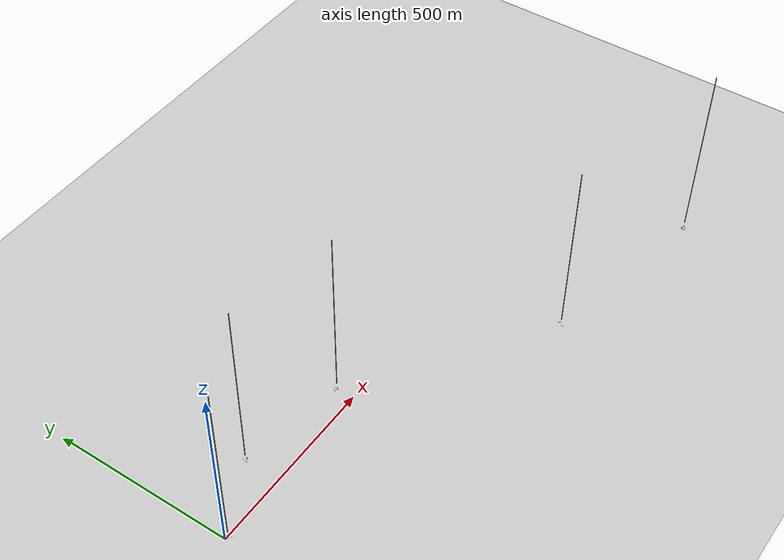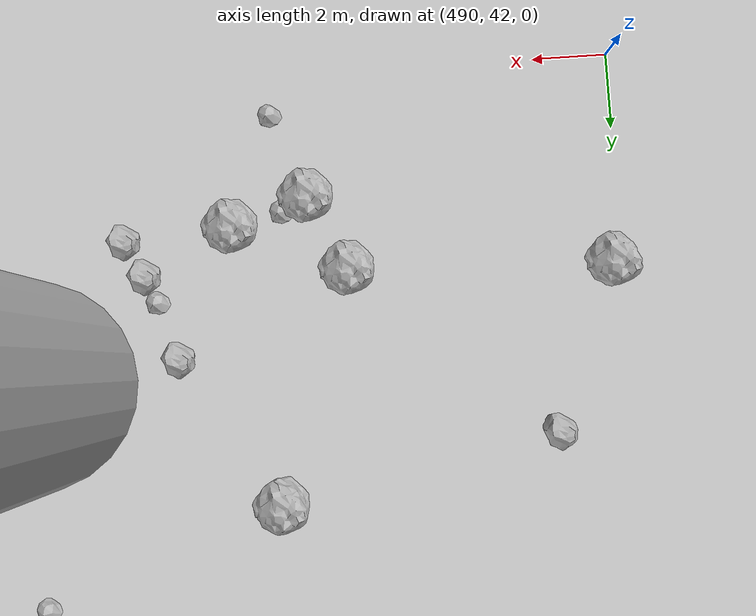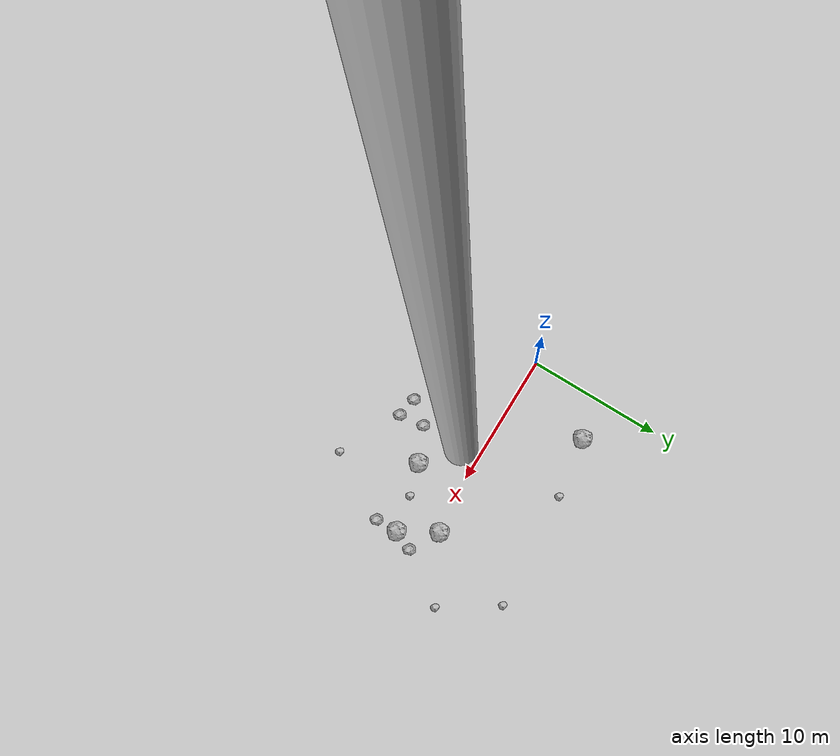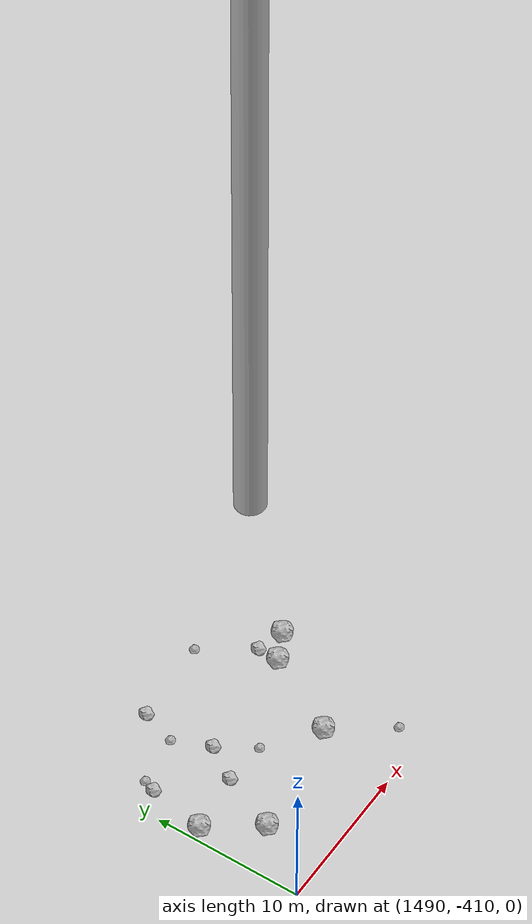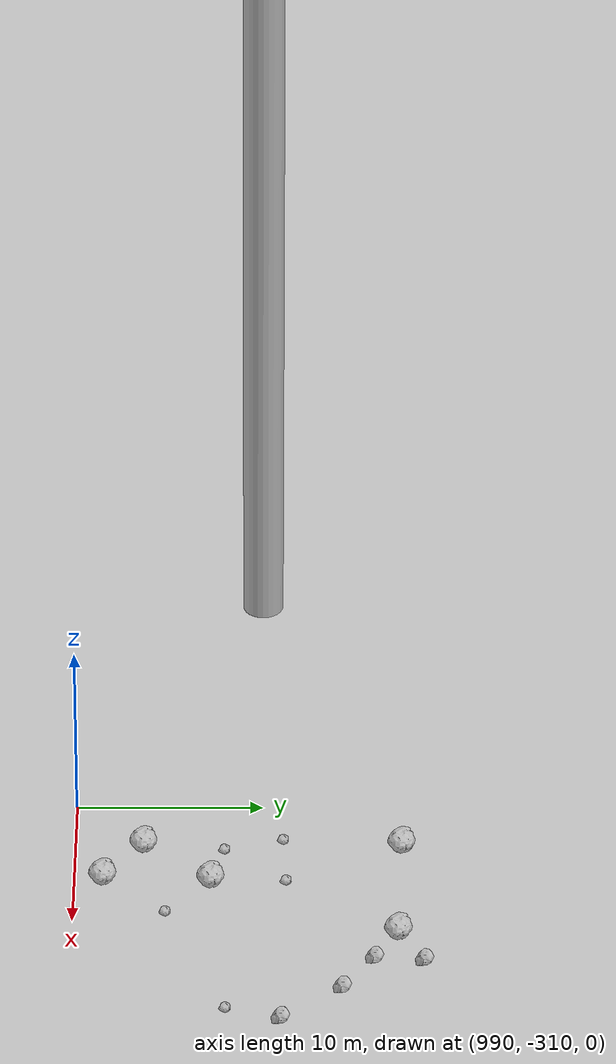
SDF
<?xml version="1.0" ?>
<sdf version="1.6">
  <world name="default">

    <include>
      <uri>model://custom_ground</uri>
    </include>

    <include>
      <uri>model://sun</uri>
    </include>

    <spherical_coordinates>
      <surface_model>EARTH_WGS84</surface_model>
      <latitude_deg>38.161479</latitude_deg>
      <longitude_deg>-122.454630</longitude_deg>
      <elevation>488.0</elevation>
      <heading_deg>90</heading_deg>
    </spherical_coordinates>

    <model name="rock1_0_0">
      <include>
        <uri>model://rock1</uri>
        <pose>10.828620680247203 -3.504781585015298 0.5 0 0 0</pose>
      </include>
    </model>
    <model name="rock1_0_1">
      <include>
        <uri>model://rock1</uri>
        <pose>3.575665401047383 -5.4992836600375306 0.5 0 0 0</pose>
      </include>
    </model>
    <model name="rock1_0_2">
      <include>
        <uri>model://rock1</uri>
        <pose>15.869141899743301 -2.2518947488512193 0.5 0 0 0</pose>
      </include>
    </model>
    <model name="rock1_0_3">
      <include>
        <uri>model://rock1</uri>
        <pose>3.160147413823302 5.755561875524933 0.5 0 0 0</pose>
      </include>
    </model>
    <model name="rock1_0_4">
      <include>
        <uri>model://rock1</uri>
        <pose>14.333954721540847 0.42899523770865144 0.5 0 0 0</pose>
      </include>
    </model>
    <model name="rock2_0_0">
      <include>
        <uri>model://rock2</uri>
        <pose>6.9877650956002535 -6.212542567536432 0.3 0 0 0</pose>
      </include>
    </model>
    <model name="rock2_0_1">
      <include>
        <uri>model://rock2</uri>
        <pose>15.877302549475115 -3.9267509392406392 0.3 0 0 0</pose>
      </include>
    </model>
    <model name="rock2_0_2">
      <include>
        <uri>model://rock2</uri>
        <pose>16.491298521750974 -0.7878109456255835 0.3 0 0 0</pose>
      </include>
    </model>
    <model name="rock2_0_3">
      <include>
        <uri>model://rock2</uri>
        <pose>8.266839763293932 -4.635893010884759 0.3 0 0 0</pose>
      </include>
    </model>
    <model name="rock2_0_4">
      <include>
        <uri>model://rock2</uri>
        <pose>8.492856780093357 -6.501839160746319 0.3 0 0 0</pose>
      </include>
    </model>
    <model name="rock3_0_0">
      <include>
        <uri>model://rock3</uri>
        <pose>7.582533963956653 6.46492068225006 0.2 0 0 0</pose>
      </include>
    </model>
    <model name="rock3_0_1">
      <include>
        <uri>model://rock3</uri>
        <pose>16.414358733297142 7.037651538146061 0.2 0 0 0</pose>
      </include>
    </model>
    <model name="rock3_0_2">
      <include>
        <uri>model://rock3</uri>
        <pose>13.049605502384562 -8.870254038993867 0.2 0 0 0</pose>
      </include>
    </model>
    <model name="rock3_0_3">
      <include>
        <uri>model://rock3</uri>
        <pose>13.150694820222888 -2.8114103266849844 0.2 0 0 0</pose>
      </include>
    </model>
    <model name="rock3_0_4">
      <include>
        <uri>model://rock3</uri>
        <pose>19.07053199987217 2.9497780384224583 0.2 0 0 0</pose>
      </include>
    </model>
    <model name="rock1_1_0">
      <include>
        <uri>model://rock1</uri>
        <pose>206.62146876128168 99.43484133071323 0.5 0 0 0</pose>
      </include>
    </model>
    <model name="rock1_1_1">
      <include>
        <uri>model://rock1</uri>
        <pose>197.38800266528932 96.95582999829493 0.5 0 0 0</pose>
      </include>
    </model>
    <model name="rock1_1_2">
      <include>
        <uri>model://rock1</uri>
        <pose>202.75808333462754 97.64141153024069 0.5 0 0 0</pose>
      </include>
    </model>
    <model name="rock1_1_3">
      <include>
        <uri>model://rock1</uri>
        <pose>195.93051706994973 93.04060837828395 0.5 0 0 0</pose>
      </include>
    </model>
    <model name="rock1_1_4">
      <include>
        <uri>model://rock1</uri>
        <pose>203.11453030663807 98.0393289900209 0.5 0 0 0</pose>
      </include>
    </model>
    <model name="rock2_1_0">
      <include>
        <uri>model://rock2</uri>
        <pose>207.37049186180923 104.7329589554544 0.3 0 0 0</pose>
      </include>
    </model>
    <model name="rock2_1_1">
      <include>
        <uri>model://rock2</uri>
        <pose>205.5331213899299 102.05041773467752 0.3 0 0 0</pose>
      </include>
    </model>
    <model name="rock2_1_2">
      <include>
        <uri>model://rock2</uri>
        <pose>192.99850661156327 102.45664166955184 0.3 0 0 0</pose>
      </include>
    </model>
    <model name="rock2_1_3">
      <include>
        <uri>model://rock2</uri>
        <pose>192.9086650275142 101.82972224038417 0.3 0 0 0</pose>
      </include>
    </model>
    <model name="rock2_1_4">
      <include>
        <uri>model://rock2</uri>
        <pose>205.39257390725078 99.54123281830752 0.3 0 0 0</pose>
      </include>
    </model>
    <model name="rock3_1_0">
      <include>
        <uri>model://rock3</uri>
        <pose>195.99496985308662 105.64785075024585 0.2 0 0 0</pose>
      </include>
    </model>
    <model name="rock3_1_1">
      <include>
        <uri>model://rock3</uri>
        <pose>196.5070382634768 94.61537705955753 0.2 0 0 0</pose>
      </include>
    </model>
    <model name="rock3_1_2">
      <include>
        <uri>model://rock3</uri>
        <pose>197.52254999292396 106.06784215138288 0.2 0 0 0</pose>
      </include>
    </model>
    <model name="rock3_1_3">
      <include>
        <uri>model://rock3</uri>
        <pose>197.90955422898546 105.1469891189915 0.2 0 0 0</pose>
      </include>
    </model>
    <model name="rock3_1_4">
      <include>
        <uri>model://rock3</uri>
        <pose>191.26599814615287 99.4878870789946 0.2 0 0 0</pose>
      </include>
    </model>
    <model name="rock1_2_0">
      <include>
        <uri>model://rock1</uri>
        <pose>497.3695337889209 47.35640106930893 0.5 0 0 0</pose>
      </include>
    </model>
    <model name="rock1_2_1">
      <include>
        <uri>model://rock1</uri>
        <pose>490.33967451325736 47.56771028023517 0.5 0 0 0</pose>
      </include>
    </model>
    <model name="rock1_2_2">
      <include>
        <uri>model://rock1</uri>
        <pose>499.4513583481114 53.47291928965261 0.5 0 0 0</pose>
      </include>
    </model>
    <model name="rock1_2_3">
      <include>
        <uri>model://rock1</uri>
        <pose>498.351420029857 45.37189915778143 0.5 0 0 0</pose>
      </include>
    </model>
    <model name="rock1_2_4">
      <include>
        <uri>model://rock1</uri>
        <pose>500.39750094863206 46.066026663622864 0.5 0 0 0</pose>
      </include>
    </model>
    <model name="rock2_2_0">
      <include>
        <uri>model://rock2</uri>
        <pose>492.00882569630545 52.02503806136861 0.3 0 0 0</pose>
      </include>
    </model>
    <model name="rock2_2_1">
      <include>
        <uri>model://rock2</uri>
        <pose>504.39542802830664 57.06868434057367 0.3 0 0 0</pose>
      </include>
    </model>
    <model name="rock2_2_2">
      <include>
        <uri>model://rock2</uri>
        <pose>503.2514404571535 46.30301270585604 0.3 0 0 0</pose>
      </include>
    </model>
    <model name="rock2_2_3">
      <include>
        <uri>model://rock2</uri>
        <pose>502.7506260580458 47.25951699675352 0.3 0 0 0</pose>
      </include>
    </model>
    <model name="rock2_2_4">
      <include>
        <uri>model://rock2</uri>
        <pose>501.95579644359395 49.513595089202994 0.3 0 0 0</pose>
      </include>
    </model>
    <model name="rock3_2_0">
      <include>
        <uri>model://rock3</uri>
        <pose>497.0156861985226 47.04649617770857 0.2 0 0 0</pose>
      </include>
    </model>
    <model name="rock3_2_1">
      <include>
        <uri>model://rock3</uri>
        <pose>505.6644581320607 55.810377058265885 0.2 0 0 0</pose>
      </include>
    </model>
    <model name="rock3_2_2">
      <include>
        <uri>model://rock3</uri>
        <pose>499.1684107788787 43.10033242505986 0.2 0 0 0</pose>
      </include>
    </model>
    <model name="rock3_2_3">
      <include>
        <uri>model://rock3</uri>
        <pose>499.00008878707473 45.72116750028127 0.2 0 0 0</pose>
      </include>
    </model>
    <model name="rock3_2_4">
      <include>
        <uri>model://rock3</uri>
        <pose>502.41529564276306 47.9454551858696 0.2 0 0 0</pose>
      </include>
    </model>
    <model name="rock1_3_0">
      <include>
        <uri>model://rock1</uri>
        <pose>996.4885296240732 -308.506729724915 0.5 0 0 0</pose>
      </include>
    </model>
    <model name="rock1_3_1">
      <include>
        <uri>model://rock1</uri>
        <pose>993.628376232928 -306.385853996243 0.5 0 0 0</pose>
      </include>
    </model>
    <model name="rock1_3_2">
      <include>
        <uri>model://rock1</uri>
        <pose>993.649342937074 -292.6324401038885 0.5 0 0 0</pose>
      </include>
    </model>
    <model name="rock1_3_3">
      <include>
        <uri>model://rock1</uri>
        <pose>1001.1775284476809 -292.9319932197181 0.5 0 0 0</pose>
      </include>
    </model>
    <model name="rock1_3_4">
      <include>
        <uri>model://rock1</uri>
        <pose>996.7210032354707 -302.79075743673843 0.5 0 0 0</pose>
      </include>
    </model>
    <model name="rock2_3_0">
      <include>
        <uri>model://rock2</uri>
        <pose>993.7396979903225 -292.4486008511861 0.3 0 0 0</pose>
      </include>
    </model>
    <model name="rock2_3_1">
      <include>
        <uri>model://rock2</uri>
        <pose>1005.8111077571184 -295.89979019287006 0.3 0 0 0</pose>
      </include>
    </model>
    <model name="rock2_3_2">
      <include>
        <uri>model://rock2</uri>
        <pose>1003.3314288355205 -294.2030510689982 0.3 0 0 0</pose>
      </include>
    </model>
    <model name="rock2_3_3">
      <include>
        <uri>model://rock2</uri>
        <pose>1003.5211772548193 -291.6081182902638 0.3 0 0 0</pose>
      </include>
    </model>
    <model name="rock2_3_4">
      <include>
        <uri>model://rock2</uri>
        <pose>1008.3650670951063 -299.1055050069527 0.3 0 0 0</pose>
      </include>
    </model>
    <model name="rock3_3_0">
      <include>
        <uri>model://rock3</uri>
        <pose>993.9201024547559 -302.07649324676635 0.2 0 0 0</pose>
      </include>
    </model>
    <model name="rock3_3_1">
      <include>
        <uri>model://rock3</uri>
        <pose>993.048855218639 -298.9483990207645 0.2 0 0 0</pose>
      </include>
    </model>
    <model name="rock3_3_2">
      <include>
        <uri>model://rock3</uri>
        <pose>1007.4702223793074 -301.9729067620161 0.2 0 0 0</pose>
      </include>
    </model>
    <model name="rock3_3_3">
      <include>
        <uri>model://rock3</uri>
        <pose>999.3475783103524 -305.1762768985795 0.2 0 0 0</pose>
      </include>
    </model>
    <model name="rock3_3_4">
      <include>
        <uri>model://rock3</uri>
        <pose>996.6452994974992 -298.8101300503513 0.2 0 0 0</pose>
      </include>
    </model>
    <model name="rock1_4_0">
      <include>
        <uri>model://rock1</uri>
        <pose>1493.141678435073 -405.8059157153518 0.5 0 0 0</pose>
      </include>
    </model>
    <model name="rock1_4_1">
      <include>
        <uri>model://rock1</uri>
        <pose>1490.7819491357052 -402.4664041982621 0.5 0 0 0</pose>
      </include>
    </model>
    <model name="rock1_4_2">
      <include>
        <uri>model://rock1</uri>
        <pose>1504.0165860555662 -399.36380350915897 0.5 0 0 0</pose>
      </include>
    </model>
    <model name="rock1_4_3">
      <include>
        <uri>model://rock1</uri>
        <pose>1501.0956337523346 -404.6639943621364 0.5 0 0 0</pose>
      </include>
    </model>
    <model name="rock1_4_4">
      <include>
        <uri>model://rock1</uri>
        <pose>1505.9183618371158 -398.4412662271049 0.5 0 0 0</pose>
      </include>
    </model>
    <model name="rock2_4_0">
      <include>
        <uri>model://rock2</uri>
        <pose>1504.0497127061076 -397.85954433148527 0.3 0 0 0</pose>
      </include>
    </model>
    <model name="rock2_4_1">
      <include>
        <uri>model://rock2</uri>
        <pose>1496.2342533954563 -399.7399033895648 0.3 0 0 0</pose>
      </include>
    </model>
    <model name="rock2_4_2">
      <include>
        <uri>model://rock2</uri>
        <pose>1496.0224742407029 -394.9399618929071 0.3 0 0 0</pose>
      </include>
    </model>
    <model name="rock2_4_3">
      <include>
        <uri>model://rock2</uri>
        <pose>1491.4971596091405 -398.57350161507134 0.3 0 0 0</pose>
      </include>
    </model>
    <model name="rock2_4_4">
      <include>
        <uri>model://rock2</uri>
        <pose>1494.7913651930874 -401.9455280444645 0.3 0 0 0</pose>
      </include>
    </model>
    <model name="rock3_4_0">
      <include>
        <uri>model://rock3</uri>
        <pose>1495.1961812792097 -397.3124730690453 0.2 0 0 0</pose>
      </include>
    </model>
    <model name="rock3_4_1">
      <include>
        <uri>model://rock3</uri>
        <pose>1491.802406239985 -397.7819880875116 0.2 0 0 0</pose>
      </include>
    </model>
    <model name="rock3_4_2">
      <include>
        <uri>model://rock3</uri>
        <pose>1503.801095794582 -408.4094576739076 0.2 0 0 0</pose>
      </include>
    </model>
    <model name="rock3_4_3">
      <include>
        <uri>model://rock3</uri>
        <pose>1501.8218530546978 -394.57388587161523 0.2 0 0 0</pose>
      </include>
    </model>
    <model name="rock3_4_4">
      <include>
        <uri>model://rock3</uri>
        <pose>1497.7446562409932 -402.16963203137544 0.2 0 0 0</pose>
      </include>
    </model>

    <model name="cylinder_1">
      <static>true</static>
      <link name="link">
        <visual name="visual">
          <geometry>
            <cylinder>
              <radius>1</radius>
              <length>500</length>
            </cylinder>
          </geometry>
        </visual>
      </link>
      <pose>10 0 270 0 0 0</pose>
    </model>

    <model name="cylinder_2">
      <static>true</static>
      <link name="link">
        <visual name="visual">
          <geometry>
            <cylinder>
              <radius>1</radius>
              <length>500</length>
            </cylinder>
          </geometry>
        </visual>
      </link>
      <pose>200 100 270 0 0 0</pose>
    </model>

    <model name="cylinder_3">
      <static>true</static>
      <link name="link">
        <visual name="visual">
          <geometry>
            <cylinder>
              <radius>1</radius>
              <length>500</length>
            </cylinder>
          </geometry>
        </visual>
      </link>
      <pose>500 50 270 0 0 0</pose>
    </model>

    <model name="cylinder_4">
      <static>true</static>
      <link name="link">
        <visual name="visual">
          <geometry>
            <cylinder>
              <radius>1</radius>
              <length>500</length>
            </cylinder>
          </geometry>
        </visual>
      </link>
      <pose>1000 -300 270 0 0 0</pose>
    </model>

    <model name="cylinder_5">
      <static>true</static>
      <link name="link">
        <visual name="visual">
          <geometry>
            <cylinder>
              <radius>1</radius>
              <length>500</length>
            </cylinder>
          </geometry>
        </visual>
      </link>
      <pose>1500 -400 270 0 0 0</pose>
    </model>

  </world>
</sdf>

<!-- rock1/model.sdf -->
<sdf version="1.6">
  <model name="rock1">
    <static>true</static> <!-- Set to true if the model should not move -->
    <pose>0 0 0 0 0 0</pose>

    <!--z offset is 0.5 for full scale-->

    <link name="link">
      <collision name="rock1_collision">
        <geometry>
          <mesh>
            <uri>model://meshes/rock1.dae</uri>
          </mesh>
        </geometry>
      </collision>
      <visual name="rock1_visual">
        <geometry>
          <mesh>
            <uri>model://meshes/rock1.dae</uri>
          </mesh>
        </geometry>
        <material>
          <script>
            <uri>model://materials/scripts/sand_pebbles.material</uri>
            <name>custom_ground/Image</name>
          </script>
        </material>
      </visual>
    </link>
  </model>
</sdf>

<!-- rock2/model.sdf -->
<sdf version="1.6">
  <model name="rock2">
    <static>true</static> <!-- Set to true if the model should not move -->
    <pose>0 0 0 0 0 0</pose>

    <!--z offset is 0.3 for full scale-->

    <link name="link">
      <collision name="rock2_collision">
        <geometry>
          <mesh>
            <uri>model://meshes/rock2.dae</uri>
          </mesh>
        </geometry>
      </collision>
      <visual name="rock2_visual">
        <geometry>
          <mesh>
            <uri>model://meshes/rock2.dae</uri>
          </mesh>
        </geometry>
        <material>
          <script>
            <uri>model://materials/scripts/sand_pebbles.material</uri>
            <name>custom_ground/Image</name>
          </script>
        </material>
      </visual>
    </link>
  </model>
</sdf>

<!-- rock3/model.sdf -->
<sdf version="1.6">
  <model name="rock3">
    <static>true</static> <!-- Set to true if the model should not move -->
    <pose>0 0 0 0 0 0</pose>

    <!--z offset is 0.2 for full scale-->

    <link name="link">
      <collision name="rock3_collision">
        <geometry>
          <mesh>
            <uri>model://meshes/rock3.dae</uri>
          </mesh>
        </geometry>
      </collision>
      <visual name="rock3_visual">
        <geometry>
          <mesh>
            <uri>model://meshes/rock3.dae</uri>
          </mesh>
        </geometry>
        <material>
          <script>
            <uri>model://materials/scripts/sand_pebbles.material</uri>
            <name>custom_ground/Image</name>
          </script>
        </material>
      </visual>
    </link>
  </model>
</sdf>

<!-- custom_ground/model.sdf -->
<sdf version="1.6">
  <model name="custom_ground">
    <static>true</static> <!-- Ground is static and immovable -->
    <link name="ground_link">
      <pose>240 0 0 0 0 0</pose> <!-- Position and orientation relative to the world -->
      <!-- Visual Representation -->
      <visual name="ground_visual">
        <geometry>
          <plane>
            <normal>0 0 1</normal> <!-- Upward facing plane -->
            <size>500 500</size> <!-- Size of the plane -->
          </plane>
        </geometry>
        <material>
          <script>
            <uri>model://materials/scripts/sand_pebbles.material</uri>
            <name>custom_ground/Image</name>
          </script>
        </material>
      </visual>

      <!-- Collision Representation -->
      <collision name="ground_collision">
        <geometry>
          <plane>
            <normal>0 0 1</normal>
            <size>100 100</size>
          </plane>
        </geometry>
      </collision>

    </link>
  </model>
</sdf>
